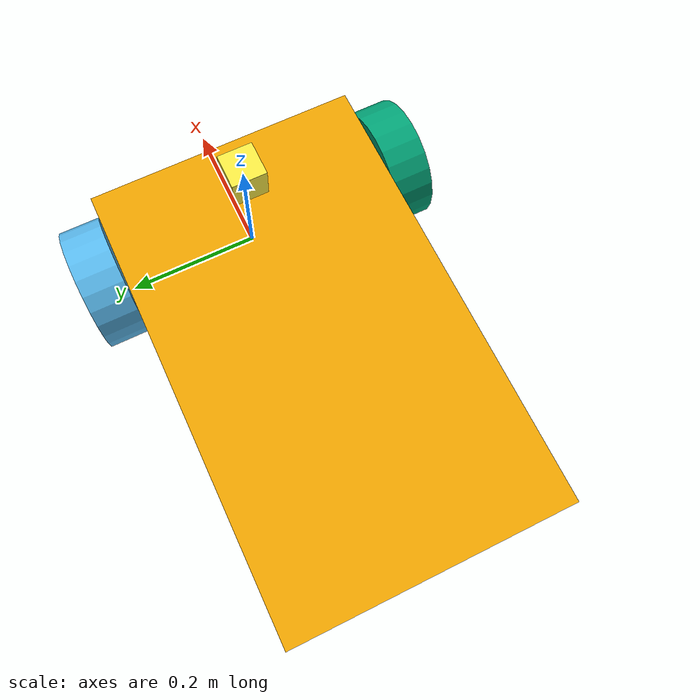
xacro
<?xml version="1.0"?>
<robot name="beteigeuze">
	<link name="base_link">
		<visual>
			<geometry>
				<box size="0.65 0.4 0.02"/>
			</geometry>
			<origin xyz="-0.235 0.0 0.13" />
		</visual>
	</link>

	<link name="wheel_left">
		<visual>
			<geometry>
				<cylinder length="0.06" radius="0.09"/>
			</geometry>
			<origin xyz="0.0 0.0 0.0" />
		</visual>
	</link>
	<joint name="base_link_to_wheel_left" type="fixed">
		<parent link="base_link" />
		<child link="wheel_left" />
        <origin xyz="0.0 0.2325 0.06" rpy="${pi/2} 0 0" />
	</joint>

	<link name="wheel_right">
		<visual>
			<geometry>
				<cylinder length="0.06" radius="0.09"/>
			</geometry>
			<origin xyz="0.0 0.0 0.0" />
		</visual>
	</link>
	<joint name="base_link_to_wheel_right" type="fixed">
		<parent link="base_link" />
		<child link="wheel_right" />
		<origin xyz="0.0 -0.2325 0.06" rpy="${pi/2} 0 0" />
	</joint>

	<link name="ar_cam">
		<visual>
			<geometry>
				<box size="0.05 0.05 0.05"/>
			</geometry>
			<origin xyz="0 0 0.0" />
		</visual>
	</link>
	<joint name="base_link_to_ar_cam" type="fixed">
		<parent link="base_link" />
		<child link="ar_cam" />
		<origin xyz="0.0 0.0 0.2" rpy="0 0 0" />
	</joint>

</robot>
